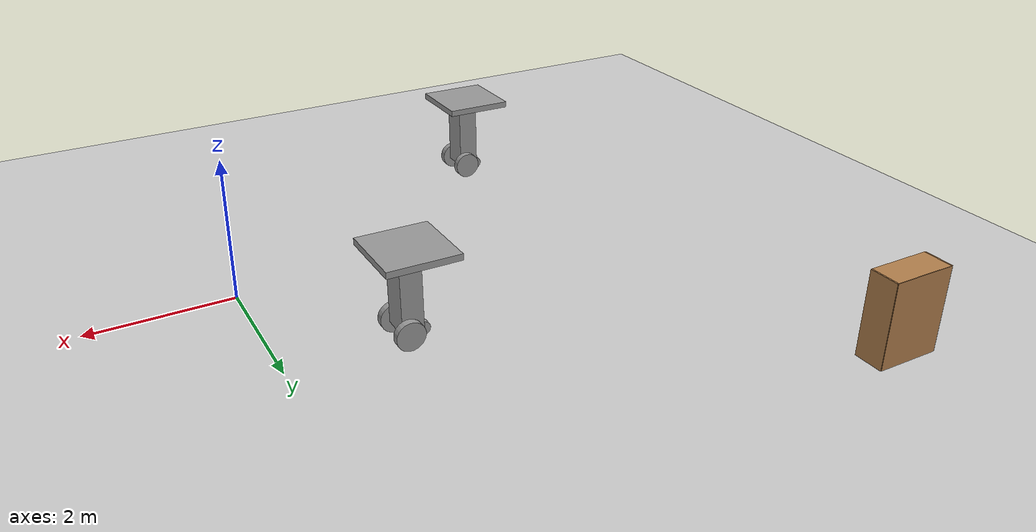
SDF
<sdf version="1.6">
 <world name="default">
  <model name="ground_plane">
   <static>1</static>
   <link name="link">
    <collision name="collision">
     <geometry><plane><normal>0 0 1</normal><size>100 100</size></plane></geometry>
     <surface>
      <contact><collide_bitmask>65535</collide_bitmask></contact>
      <friction><ode><mu>100</mu><mu2>50</mu2></ode></friction>
     </surface>
    </collision>
    <visual name="visual">
     <cast_shadows>0</cast_shadows>
     <geometry><plane><normal>0 0 1</normal><size>100 100</size></plane></geometry>
     <material>
      <script><uri>file://media/materials/scripts/gazebo.material</uri><name>Gazebo/Grey</name></script>
     </material>
    </visual>
   </link>
  </model>
  <model name="bookshelf">
   <static>1</static>
   <link name="link">
    <inertial><mass>1</mass></inertial>
    <collision name="back">
     <pose>0 0.005 0.6 0 -0 0</pose>
     <geometry><box><size>0.9 0.01 1.2</size></box></geometry>
    </collision>
    <visual name="visual1">
     <pose>0 0.005 0.6 0 -0 0</pose>
     <geometry><box><size>0.9 0.01 1.2</size></box></geometry>
     <material>
      <script><uri>file://media/materials/scripts/gazebo.material</uri><name>Gazebo/Wood</name></script>
     </material>
    </visual>
    <collision name="left_side">
     <pose>0.45 -0.195 0.6 0 -0 0</pose>
     <geometry><box><size>0.02 0.4 1.2</size></box></geometry>
    </collision>
    <visual name="visual2">
     <pose>0.45 -0.195 0.6 0 -0 0</pose>
     <geometry><box><size>0.02 0.4 1.2</size></box></geometry>
     <material>
      <script><uri>file://media/materials/scripts/gazebo.material</uri><name>Gazebo/Wood</name></script>
     </material>
    </visual>
    <collision name="right_side">
     <pose>-0.45 -0.195 0.6 0 -0 0</pose>
     <geometry><box><size>0.02 0.4 1.2</size></box></geometry>
    </collision>
    <visual name="visual3">
     <pose>-0.45 -0.195 0.6 0 -0 0</pose>
     <geometry><box><size>0.02 0.4 1.2</size></box></geometry>
     <material>
      <script><uri>file://media/materials/scripts/gazebo.material</uri><name>Gazebo/Wood</name></script>
     </material>
    </visual>
    <collision name="bottom">
     <pose>0 -0.195 0.03 0 -0 0</pose>
     <geometry><box><size>0.88 0.4 0.06</size></box></geometry>
    </collision>
    <visual name="visual4">
     <pose>0 -0.195 0.03 0 -0 0</pose>
     <geometry><box><size>0.88 0.4 0.06</size></box></geometry>
     <material>
      <script><uri>file://media/materials/scripts/gazebo.material</uri><name>Gazebo/Wood</name></script>
     </material>
    </visual>
    <collision name="top">
     <pose>0 -0.195 1.19 0 -0 0</pose>
     <geometry><box><size>0.88 0.4 0.02</size></box></geometry>
    </collision>
    <visual name="visual5">
     <pose>0 -0.195 1.19 0 -0 0</pose>
     <geometry><box><size>0.88 0.4 0.02</size></box></geometry>
     <material>
      <script><uri>file://media/materials/scripts/gazebo.material</uri><name>Gazebo/Wood</name></script>
     </material>
    </visual>
    <collision name="low_shelf">
     <pose>0 -0.195 0.43 0 -0 0</pose>
     <geometry><box><size>0.88 0.4 0.02</size></box></geometry>
    </collision>
    <visual name="visual6">
     <pose>0 -0.195 0.43 0 -0 0</pose>
     <geometry><box><size>0.88 0.4 0.02</size></box></geometry>
     <material>
      <script><uri>file://media/materials/scripts/gazebo.material</uri><name>Gazebo/Wood</name></script>
     </material>
    </visual>
    <collision name="high_shelf">
     <pose>0 -0.195 0.8 0 -0 0</pose>
     <geometry><box><size>0.88 0.4 0.02</size></box></geometry>
    </collision>
    <visual name="visual7">
     <pose>0 -0.195 0.8 0 -0 0</pose>
     <geometry><box><size>0.88 0.4 0.02</size></box></geometry>
     <material>
      <script><uri>file://media/materials/scripts/gazebo.material</uri><name>Gazebo/Wood</name></script>
     </material>
    </visual>
   </link>
   <pose>-6.73615 5.33123 0 0 -0 0</pose>
  </model>
  <model name="my-robo--table">
   <link name="link_0">
    <inertial>
     <mass>1</mass>
     <inertia><ixx>0.145833</ixx><ixy>0</ixy><ixz>0</ixz><iyy>0.145833</iyy><iyz>0</iyz><izz>0.125</izz></inertia>
    </inertial>
    <pose>-0.23542 -0.030044 -0.250504 1.5707 -0 0</pose>
    <visual name="visual">
     <geometry><cylinder><radius>0.1</radius><length>0.1</length></cylinder></geometry>
     <material>
      <lighting>1</lighting>
      <script><uri>file://media/materials/scripts/gazebo.material</uri><name>Gazebo/Grey</name></script>
      <shader type="vertex"><normal_map>__default__</normal_map></shader>
      <ambient>0.3 0.3 0.3 1</ambient>
      <diffuse>0.7 0.7 0.7 1</diffuse>
      <specular>0.01 0.01 0.01 1</specular>
      <emissive>0 0 0 1</emissive>
     </material>
    </visual>
    <collision name="collision">
     <geometry><cylinder><radius>0.1</radius><length>0.1</length></cylinder></geometry>
     <surface>
      <friction>
       <ode><mu>1</mu><mu2>1</mu2><fdir1>0 0 0</fdir1><slip1>0</slip1><slip2>0</slip2></ode>
       <torsional>
        <coefficient>1</coefficient>
        <patch_radius>0</patch_radius>
        <surface_radius>0</surface_radius>
        <use_patch_radius>1</use_patch_radius>
        <ode><slip>0</slip></ode>
       </torsional>
      </friction>
      <bounce><restitution_coefficient>0</restitution_coefficient><threshold>1e+06</threshold></bounce>
      <contact>
       <collide_without_contact>0</collide_without_contact>
       <collide_without_contact_bitmask>1</collide_without_contact_bitmask>
       <collide_bitmask>1</collide_bitmask>
       <ode>
        <soft_cfm>0</soft_cfm>
        <soft_erp>0.2</soft_erp>
        <kp>1e+13</kp>
        <kd>1</kd>
        <max_vel>0.01</max_vel>
        <min_depth>0</min_depth>
       </ode>
       <bullet>
        <split_impulse>1</split_impulse>
        <split_impulse_penetration_threshold>-0.01</split_impulse_penetration_threshold>
        <soft_cfm>0</soft_cfm>
        <soft_erp>0.2</soft_erp>
        <kp>1e+13</kp>
        <kd>1</kd>
       </bullet>
      </contact>
     </surface>
    </collision>
   </link>
   <link name="link_3">
    <inertial>
     <mass>1</mass>
     <inertia><ixx>0.145833</ixx><ixy>0</ixy><ixz>0</ixz><iyy>0.145833</iyy><iyz>0</iyz><izz>0.125</izz></inertia>
    </inertial>
    <pose>0.05458 -0.280049 -0.260504 1.5707 -0 0</pose>
    <visual name="visual">
     <geometry><cylinder><radius>0.2</radius><length>0.1</length></cylinder></geometry>
     <material>
      <lighting>1</lighting>
      <script><uri>file://media/materials/scripts/gazebo.material</uri><name>Gazebo/Grey</name></script>
      <shader type="vertex"><normal_map>__default__</normal_map></shader>
      <ambient>0.3 0.3 0.3 1</ambient>
      <diffuse>0.7 0.7 0.7 1</diffuse>
      <specular>0.01 0.01 0.01 1</specular>
      <emissive>0 0 0 1</emissive>
     </material>
    </visual>
    <collision name="collision">
     <geometry><cylinder><radius>0.2</radius><length>0.1</length></cylinder></geometry>
     <surface>
      <friction>
       <ode><mu>1</mu><mu2>1</mu2><fdir1>0 0 0</fdir1><slip1>0</slip1><slip2>0</slip2></ode>
       <torsional>
        <coefficient>1</coefficient>
        <patch_radius>0</patch_radius>
        <surface_radius>0</surface_radius>
        <use_patch_radius>1</use_patch_radius>
        <ode><slip>0</slip></ode>
       </torsional>
      </friction>
      <bounce><restitution_coefficient>0</restitution_coefficient><threshold>1e+06</threshold></bounce>
      <contact>
       <collide_without_contact>0</collide_without_contact>
       <collide_without_contact_bitmask>1</collide_without_contact_bitmask>
       <collide_bitmask>1</collide_bitmask>
       <ode>
        <soft_cfm>0</soft_cfm>
        <soft_erp>0.2</soft_erp>
        <kp>1e+13</kp>
        <kd>1</kd>
        <max_vel>0.01</max_vel>
        <min_depth>0</min_depth>
       </ode>
       <bullet>
        <split_impulse>1</split_impulse>
        <split_impulse_penetration_threshold>-0.01</split_impulse_penetration_threshold>
        <soft_cfm>0</soft_cfm>
        <soft_erp>0.2</soft_erp>
        <kp>1e+13</kp>
        <kd>1</kd>
       </bullet>
      </contact>
     </surface>
    </collision>
   </link>
   <link name="link_3_clone">
    <inertial>
     <mass>1</mass>
     <inertia><ixx>0.145833</ixx><ixy>0</ixy><ixz>0</ixz><iyy>0.145833</iyy><iyz>0</iyz><izz>0.125</izz></inertia>
    </inertial>
    <pose>0.05458 0.219989 -0.260504 1.5707 -0 0</pose>
    <visual name="visual">
     <geometry><cylinder><radius>0.2</radius><length>0.1</length></cylinder></geometry>
     <material>
      <lighting>1</lighting>
      <script><uri>file://media/materials/scripts/gazebo.material</uri><name>Gazebo/Grey</name></script>
      <shader type="vertex"><normal_map>__default__</normal_map></shader>
      <ambient>0.3 0.3 0.3 1</ambient>
      <diffuse>0.7 0.7 0.7 1</diffuse>
      <specular>0.01 0.01 0.01 1</specular>
      <emissive>0 0 0 1</emissive>
     </material>
    </visual>
    <collision name="collision">
     <geometry><cylinder><radius>0.2</radius><length>0.1</length></cylinder></geometry>
     <surface>
      <friction>
       <ode><mu>1</mu><mu2>1</mu2><fdir1>0 0 0</fdir1><slip1>0</slip1><slip2>0</slip2></ode>
       <torsional>
        <coefficient>1</coefficient>
        <patch_radius>0</patch_radius>
        <surface_radius>0</surface_radius>
        <use_patch_radius>1</use_patch_radius>
        <ode><slip>0</slip></ode>
       </torsional>
      </friction>
      <bounce><restitution_coefficient>0</restitution_coefficient><threshold>1e+06</threshold></bounce>
      <contact>
       <collide_without_contact>0</collide_without_contact>
       <collide_without_contact_bitmask>1</collide_without_contact_bitmask>
       <collide_bitmask>1</collide_bitmask>
       <ode>
        <soft_cfm>0</soft_cfm>
        <soft_erp>0.2</soft_erp>
        <kp>1e+13</kp>
        <kd>1</kd>
        <max_vel>0.01</max_vel>
        <min_depth>0</min_depth>
       </ode>
       <bullet>
        <split_impulse>1</split_impulse>
        <split_impulse_penetration_threshold>-0.01</split_impulse_penetration_threshold>
        <soft_cfm>0</soft_cfm>
        <soft_erp>0.2</soft_erp>
        <kp>1e+13</kp>
        <kd>1</kd>
       </bullet>
      </contact>
     </surface>
    </collision>
   </link>
   <link name="link_4">
    <inertial>
     <mass>1</mass>
     <inertia>
      <ixx>0.166667</ixx>
      <ixy>0</ixy>
      <ixz>0</ixz>
      <iyy>0.166667</iyy>
      <iyz>0</iyz>
      <izz>0.166667</izz>
     </inertia>
    </inertial>
    <pose>0.174801 -0.03003 0.202531 0 0.403831 0</pose>
    <visual name="visual">
     <geometry><box><size>0.3 0.4 1</size></box></geometry>
     <material>
      <lighting>1</lighting>
      <script><uri>file://media/materials/scripts/gazebo.material</uri><name>Gazebo/Grey</name></script>
      <shader type="vertex"><normal_map>__default__</normal_map></shader>
      <ambient>0.3 0.3 0.3 1</ambient>
      <diffuse>0.7 0.7 0.7 1</diffuse>
      <specular>0.01 0.01 0.01 1</specular>
      <emissive>0 0 0 1</emissive>
     </material>
    </visual>
    <collision name="collision">
     <geometry><box><size>0.3 0.4 1</size></box></geometry>
     <surface>
      <friction>
       <ode><mu>1</mu><mu2>1</mu2><fdir1>0 0 0</fdir1><slip1>0</slip1><slip2>0</slip2></ode>
       <torsional>
        <coefficient>1</coefficient>
        <patch_radius>0</patch_radius>
        <surface_radius>0</surface_radius>
        <use_patch_radius>1</use_patch_radius>
        <ode><slip>0</slip></ode>
       </torsional>
      </friction>
      <bounce><restitution_coefficient>0</restitution_coefficient><threshold>1e+06</threshold></bounce>
      <contact>
       <collide_without_contact>0</collide_without_contact>
       <collide_without_contact_bitmask>1</collide_without_contact_bitmask>
       <collide_bitmask>1</collide_bitmask>
       <ode>
        <soft_cfm>0</soft_cfm>
        <soft_erp>0.2</soft_erp>
        <kp>1e+13</kp>
        <kd>1</kd>
        <max_vel>0.01</max_vel>
        <min_depth>0</min_depth>
       </ode>
       <bullet>
        <split_impulse>1</split_impulse>
        <split_impulse_penetration_threshold>-0.01</split_impulse_penetration_threshold>
        <soft_cfm>0</soft_cfm>
        <soft_erp>0.2</soft_erp>
        <kp>1e+13</kp>
        <kd>1</kd>
       </bullet>
      </contact>
     </surface>
    </collision>
   </link>
   <link name="link_5">
    <inertial>
     <mass>3.20821</mass>
     <inertia><ixx>0.37742</ixx><ixy>0</ixy><ixz>0</ixz><iyy>0.37742</iyy><iyz>0</iyz><izz>0.534702</izz></inertia>
    </inertial>
    <pose>0.343061 -0.026636 0.759998 0.009094 0.378667 0.004972</pose>
    <visual name="visual">
     <geometry><box><size>1 1 0.09</size></box></geometry>
     <material>
      <lighting>1</lighting>
      <script><uri>file://media/materials/scripts/gazebo.material</uri><name>Gazebo/Grey</name></script>
      <shader type="vertex"><normal_map>__default__</normal_map></shader>
      <ambient>0.3 0.3 0.3 1</ambient>
      <diffuse>0.7 0.7 0.7 1</diffuse>
      <specular>0.01 0.01 0.01 1</specular>
      <emissive>0 0 0 1</emissive>
     </material>
    </visual>
    <collision name="collision">
     <geometry><box><size>1 1 0.09</size></box></geometry>
     <surface>
      <friction>
       <ode><mu>1</mu><mu2>1</mu2><fdir1>0 0 0</fdir1><slip1>0</slip1><slip2>0</slip2></ode>
       <torsional>
        <coefficient>1</coefficient>
        <patch_radius>0</patch_radius>
        <surface_radius>0</surface_radius>
        <use_patch_radius>1</use_patch_radius>
        <ode><slip>0</slip></ode>
       </torsional>
      </friction>
      <bounce><restitution_coefficient>0</restitution_coefficient><threshold>1e+06</threshold></bounce>
      <contact>
       <collide_without_contact>0</collide_without_contact>
       <collide_without_contact_bitmask>1</collide_without_contact_bitmask>
       <collide_bitmask>1</collide_bitmask>
       <ode>
        <soft_cfm>0</soft_cfm>
        <soft_erp>0.2</soft_erp>
        <kp>1e+13</kp>
        <kd>1</kd>
        <max_vel>0.01</max_vel>
        <min_depth>0</min_depth>
       </ode>
       <bullet>
        <split_impulse>1</split_impulse>
        <split_impulse_penetration_threshold>-0.01</split_impulse_penetration_threshold>
        <soft_cfm>0</soft_cfm>
        <soft_erp>0.2</soft_erp>
        <kp>1e+13</kp>
        <kd>1</kd>
       </bullet>
      </contact>
     </surface>
    </collision>
   </link>
   <joint name="link_4_JOINT_0" type="revolute">
    <parent>link_4</parent>
    <child>link_5</child>
    <axis>
     <xyz>0 0 1</xyz>
     <use_parent_model_frame>0</use_parent_model_frame>
     <limit>
      <lower>-1.79769e+308</lower>
      <upper>1.79769e+308</upper>
      <effort>-1</effort>
      <velocity>-1</velocity>
     </limit>
     <dynamics>
      <spring_reference>0</spring_reference>
      <spring_stiffness>0</spring_stiffness>
      <damping>0</damping>
     </dynamics>
    </axis>
    <physics>
     <ode><limit><cfm>0</cfm><erp>0.2</erp></limit><suspension><cfm>0</cfm><erp>0.2</erp></suspension></ode>
    </physics>
   </joint>
   <joint name="link_4_JOINT_4" type="revolute">
    <parent>link_4</parent>
    <child>link_3_clone</child>
    <axis>
     <xyz>1 0 0</xyz>
     <use_parent_model_frame>0</use_parent_model_frame>
     <limit>
      <lower>-1.79769e+308</lower>
      <upper>1.79769e+308</upper>
      <effort>-1</effort>
      <velocity>-1</velocity>
     </limit>
     <dynamics>
      <spring_reference>0</spring_reference>
      <spring_stiffness>0</spring_stiffness>
      <damping>0</damping>
      <friction>0</friction>
     </dynamics>
    </axis>
    <physics>
     <ode><limit><cfm>0</cfm><erp>0.2</erp></limit><suspension><cfm>0</cfm><erp>0.2</erp></suspension></ode>
    </physics>
   </joint>
   <joint name="link_4_JOINT_5" type="revolute">
    <parent>link_4</parent>
    <child>link_3</child>
    <axis>
     <xyz>1 0 0</xyz>
     <use_parent_model_frame>0</use_parent_model_frame>
     <limit>
      <lower>-1.79769e+308</lower>
      <upper>1.79769e+308</upper>
      <effort>-1</effort>
      <velocity>-1</velocity>
     </limit>
     <dynamics>
      <spring_reference>0</spring_reference>
      <spring_stiffness>0</spring_stiffness>
      <damping>0</damping>
      <friction>0</friction>
     </dynamics>
    </axis>
    <physics>
     <ode><limit><cfm>0</cfm><erp>0.2</erp></limit><suspension><cfm>0</cfm><erp>0.2</erp></suspension></ode>
    </physics>
   </joint>
   <joint name="link_4_JOINT_6" type="revolute">
    <parent>link_4</parent>
    <child>link_0</child>
    <axis>
     <xyz>1 0 0</xyz>
     <use_parent_model_frame>0</use_parent_model_frame>
     <limit>
      <lower>-1.79769e+308</lower>
      <upper>1.79769e+308</upper>
      <effort>-1</effort>
      <velocity>-1</velocity>
     </limit>
     <dynamics>
      <spring_reference>0</spring_reference>
      <spring_stiffness>0</spring_stiffness>
      <damping>0</damping>
      <friction>0</friction>
     </dynamics>
    </axis>
    <physics>
     <ode><limit><cfm>0</cfm><erp>0.2</erp></limit><suspension><cfm>0</cfm><erp>0.2</erp></suspension></ode>
    </physics>
   </joint>
   <static>0</static>
   <pose>-1.69452 2.00992 0.420744 9.5e-05 -0.386296 -0.003733</pose>
  </model>
  <model name="my-robo--table_clone">
   <link name="link_0">
    <inertial>
     <mass>1</mass>
     <inertia><ixx>0.145833</ixx><ixy>0</ixy><ixz>0</ixz><iyy>0.145833</iyy><iyz>0</iyz><izz>0.125</izz></inertia>
    </inertial>
    <pose>-0.23542 -0.030044 -0.250504 1.5707 -0 0</pose>
    <visual name="visual">
     <geometry><cylinder><radius>0.1</radius><length>0.1</length></cylinder></geometry>
     <material>
      <lighting>1</lighting>
      <script><uri>file://media/materials/scripts/gazebo.material</uri><name>Gazebo/Grey</name></script>
      <shader type="vertex"><normal_map>__default__</normal_map></shader>
      <ambient>0.3 0.3 0.3 1</ambient>
      <diffuse>0.7 0.7 0.7 1</diffuse>
      <specular>0.01 0.01 0.01 1</specular>
      <emissive>0 0 0 1</emissive>
     </material>
    </visual>
    <collision name="collision">
     <geometry><cylinder><radius>0.1</radius><length>0.1</length></cylinder></geometry>
     <surface>
      <friction>
       <ode><mu>1</mu><mu2>1</mu2><fdir1>0 0 0</fdir1><slip1>0</slip1><slip2>0</slip2></ode>
       <torsional>
        <coefficient>1</coefficient>
        <patch_radius>0</patch_radius>
        <surface_radius>0</surface_radius>
        <use_patch_radius>1</use_patch_radius>
        <ode><slip>0</slip></ode>
       </torsional>
      </friction>
      <bounce><restitution_coefficient>0</restitution_coefficient><threshold>1e+06</threshold></bounce>
      <contact>
       <collide_without_contact>0</collide_without_contact>
       <collide_without_contact_bitmask>1</collide_without_contact_bitmask>
       <collide_bitmask>1</collide_bitmask>
       <ode>
        <soft_cfm>0</soft_cfm>
        <soft_erp>0.2</soft_erp>
        <kp>1e+13</kp>
        <kd>1</kd>
        <max_vel>0.01</max_vel>
        <min_depth>0</min_depth>
       </ode>
       <bullet>
        <split_impulse>1</split_impulse>
        <split_impulse_penetration_threshold>-0.01</split_impulse_penetration_threshold>
        <soft_cfm>0</soft_cfm>
        <soft_erp>0.2</soft_erp>
        <kp>1e+13</kp>
        <kd>1</kd>
       </bullet>
      </contact>
     </surface>
    </collision>
   </link>
   <link name="link_3">
    <inertial>
     <mass>1</mass>
     <inertia><ixx>0.145833</ixx><ixy>0</ixy><ixz>0</ixz><iyy>0.145833</iyy><iyz>0</iyz><izz>0.125</izz></inertia>
    </inertial>
    <pose>0.05458 -0.280049 -0.260504 1.5707 -0 0</pose>
    <visual name="visual">
     <geometry><cylinder><radius>0.2</radius><length>0.1</length></cylinder></geometry>
     <material>
      <lighting>1</lighting>
      <script><uri>file://media/materials/scripts/gazebo.material</uri><name>Gazebo/Grey</name></script>
      <shader type="vertex"><normal_map>__default__</normal_map></shader>
      <ambient>0.3 0.3 0.3 1</ambient>
      <diffuse>0.7 0.7 0.7 1</diffuse>
      <specular>0.01 0.01 0.01 1</specular>
      <emissive>0 0 0 1</emissive>
     </material>
    </visual>
    <collision name="collision">
     <geometry><cylinder><radius>0.2</radius><length>0.1</length></cylinder></geometry>
     <surface>
      <friction>
       <ode><mu>1</mu><mu2>1</mu2><fdir1>0 0 0</fdir1><slip1>0</slip1><slip2>0</slip2></ode>
       <torsional>
        <coefficient>1</coefficient>
        <patch_radius>0</patch_radius>
        <surface_radius>0</surface_radius>
        <use_patch_radius>1</use_patch_radius>
        <ode><slip>0</slip></ode>
       </torsional>
      </friction>
      <bounce><restitution_coefficient>0</restitution_coefficient><threshold>1e+06</threshold></bounce>
      <contact>
       <collide_without_contact>0</collide_without_contact>
       <collide_without_contact_bitmask>1</collide_without_contact_bitmask>
       <collide_bitmask>1</collide_bitmask>
       <ode>
        <soft_cfm>0</soft_cfm>
        <soft_erp>0.2</soft_erp>
        <kp>1e+13</kp>
        <kd>1</kd>
        <max_vel>0.01</max_vel>
        <min_depth>0</min_depth>
       </ode>
       <bullet>
        <split_impulse>1</split_impulse>
        <split_impulse_penetration_threshold>-0.01</split_impulse_penetration_threshold>
        <soft_cfm>0</soft_cfm>
        <soft_erp>0.2</soft_erp>
        <kp>1e+13</kp>
        <kd>1</kd>
       </bullet>
      </contact>
     </surface>
    </collision>
   </link>
   <link name="link_3_clone">
    <inertial>
     <mass>1</mass>
     <inertia><ixx>0.145833</ixx><ixy>0</ixy><ixz>0</ixz><iyy>0.145833</iyy><iyz>0</iyz><izz>0.125</izz></inertia>
    </inertial>
    <pose>0.05458 0.219989 -0.260504 1.5707 -0 0</pose>
    <visual name="visual">
     <geometry><cylinder><radius>0.2</radius><length>0.1</length></cylinder></geometry>
     <material>
      <lighting>1</lighting>
      <script><uri>file://media/materials/scripts/gazebo.material</uri><name>Gazebo/Grey</name></script>
      <shader type="vertex"><normal_map>__default__</normal_map></shader>
      <ambient>0.3 0.3 0.3 1</ambient>
      <diffuse>0.7 0.7 0.7 1</diffuse>
      <specular>0.01 0.01 0.01 1</specular>
      <emissive>0 0 0 1</emissive>
     </material>
    </visual>
    <collision name="collision">
     <geometry><cylinder><radius>0.2</radius><length>0.1</length></cylinder></geometry>
     <surface>
      <friction>
       <ode><mu>1</mu><mu2>1</mu2><fdir1>0 0 0</fdir1><slip1>0</slip1><slip2>0</slip2></ode>
       <torsional>
        <coefficient>1</coefficient>
        <patch_radius>0</patch_radius>
        <surface_radius>0</surface_radius>
        <use_patch_radius>1</use_patch_radius>
        <ode><slip>0</slip></ode>
       </torsional>
      </friction>
      <bounce><restitution_coefficient>0</restitution_coefficient><threshold>1e+06</threshold></bounce>
      <contact>
       <collide_without_contact>0</collide_without_contact>
       <collide_without_contact_bitmask>1</collide_without_contact_bitmask>
       <collide_bitmask>1</collide_bitmask>
       <ode>
        <soft_cfm>0</soft_cfm>
        <soft_erp>0.2</soft_erp>
        <kp>1e+13</kp>
        <kd>1</kd>
        <max_vel>0.01</max_vel>
        <min_depth>0</min_depth>
       </ode>
       <bullet>
        <split_impulse>1</split_impulse>
        <split_impulse_penetration_threshold>-0.01</split_impulse_penetration_threshold>
        <soft_cfm>0</soft_cfm>
        <soft_erp>0.2</soft_erp>
        <kp>1e+13</kp>
        <kd>1</kd>
       </bullet>
      </contact>
     </surface>
    </collision>
   </link>
   <link name="link_4">
    <inertial>
     <mass>1</mass>
     <inertia>
      <ixx>0.166667</ixx>
      <ixy>0</ixy>
      <ixz>0</ixz>
      <iyy>0.166667</iyy>
      <iyz>0</iyz>
      <izz>0.166667</izz>
     </inertia>
    </inertial>
    <pose>0.174801 -0.03003 0.202531 0 0.403831 0</pose>
    <visual name="visual">
     <geometry><box><size>0.3 0.4 1</size></box></geometry>
     <material>
      <lighting>1</lighting>
      <script><uri>file://media/materials/scripts/gazebo.material</uri><name>Gazebo/Grey</name></script>
      <shader type="vertex"><normal_map>__default__</normal_map></shader>
      <ambient>0.3 0.3 0.3 1</ambient>
      <diffuse>0.7 0.7 0.7 1</diffuse>
      <specular>0.01 0.01 0.01 1</specular>
      <emissive>0 0 0 1</emissive>
     </material>
    </visual>
    <collision name="collision">
     <geometry><box><size>0.3 0.4 1</size></box></geometry>
     <surface>
      <friction>
       <ode><mu>1</mu><mu2>1</mu2><fdir1>0 0 0</fdir1><slip1>0</slip1><slip2>0</slip2></ode>
       <torsional>
        <coefficient>1</coefficient>
        <patch_radius>0</patch_radius>
        <surface_radius>0</surface_radius>
        <use_patch_radius>1</use_patch_radius>
        <ode><slip>0</slip></ode>
       </torsional>
      </friction>
      <bounce><restitution_coefficient>0</restitution_coefficient><threshold>1e+06</threshold></bounce>
      <contact>
       <collide_without_contact>0</collide_without_contact>
       <collide_without_contact_bitmask>1</collide_without_contact_bitmask>
       <collide_bitmask>1</collide_bitmask>
       <ode>
        <soft_cfm>0</soft_cfm>
        <soft_erp>0.2</soft_erp>
        <kp>1e+13</kp>
        <kd>1</kd>
        <max_vel>0.01</max_vel>
        <min_depth>0</min_depth>
       </ode>
       <bullet>
        <split_impulse>1</split_impulse>
        <split_impulse_penetration_threshold>-0.01</split_impulse_penetration_threshold>
        <soft_cfm>0</soft_cfm>
        <soft_erp>0.2</soft_erp>
        <kp>1e+13</kp>
        <kd>1</kd>
       </bullet>
      </contact>
     </surface>
    </collision>
   </link>
   <link name="link_5">
    <inertial>
     <mass>3.20821</mass>
     <inertia><ixx>0.37742</ixx><ixy>0</ixy><ixz>0</ixz><iyy>0.37742</iyy><iyz>0</iyz><izz>0.534702</izz></inertia>
    </inertial>
    <pose>0.343061 -0.026636 0.759998 0.009094 0.378667 0.004972</pose>
    <visual name="visual">
     <geometry><box><size>1 1 0.09</size></box></geometry>
     <material>
      <lighting>1</lighting>
      <script><uri>file://media/materials/scripts/gazebo.material</uri><name>Gazebo/Grey</name></script>
      <shader type="vertex"><normal_map>__default__</normal_map></shader>
      <ambient>0.3 0.3 0.3 1</ambient>
      <diffuse>0.7 0.7 0.7 1</diffuse>
      <specular>0.01 0.01 0.01 1</specular>
      <emissive>0 0 0 1</emissive>
     </material>
    </visual>
    <collision name="collision">
     <geometry><box><size>1 1 0.09</size></box></geometry>
     <surface>
      <friction>
       <ode><mu>1</mu><mu2>1</mu2><fdir1>0 0 0</fdir1><slip1>0</slip1><slip2>0</slip2></ode>
       <torsional>
        <coefficient>1</coefficient>
        <patch_radius>0</patch_radius>
        <surface_radius>0</surface_radius>
        <use_patch_radius>1</use_patch_radius>
        <ode><slip>0</slip></ode>
       </torsional>
      </friction>
      <bounce><restitution_coefficient>0</restitution_coefficient><threshold>1e+06</threshold></bounce>
      <contact>
       <collide_without_contact>0</collide_without_contact>
       <collide_without_contact_bitmask>1</collide_without_contact_bitmask>
       <collide_bitmask>1</collide_bitmask>
       <ode>
        <soft_cfm>0</soft_cfm>
        <soft_erp>0.2</soft_erp>
        <kp>1e+13</kp>
        <kd>1</kd>
        <max_vel>0.01</max_vel>
        <min_depth>0</min_depth>
       </ode>
       <bullet>
        <split_impulse>1</split_impulse>
        <split_impulse_penetration_threshold>-0.01</split_impulse_penetration_threshold>
        <soft_cfm>0</soft_cfm>
        <soft_erp>0.2</soft_erp>
        <kp>1e+13</kp>
        <kd>1</kd>
       </bullet>
      </contact>
     </surface>
    </collision>
   </link>
   <joint name="link_4_JOINT_0" type="revolute">
    <parent>link_4</parent>
    <child>link_5</child>
    <axis>
     <xyz>0 0 1</xyz>
     <use_parent_model_frame>0</use_parent_model_frame>
     <limit>
      <lower>-1.79769e+308</lower>
      <upper>1.79769e+308</upper>
      <effort>-1</effort>
      <velocity>-1</velocity>
     </limit>
     <dynamics>
      <spring_reference>0</spring_reference>
      <spring_stiffness>0</spring_stiffness>
      <damping>0</damping>
     </dynamics>
    </axis>
    <physics>
     <ode><limit><cfm>0</cfm><erp>0.2</erp></limit><suspension><cfm>0</cfm><erp>0.2</erp></suspension></ode>
    </physics>
   </joint>
   <joint name="link_4_JOINT_4" type="revolute">
    <parent>link_4</parent>
    <child>link_3_clone</child>
    <axis>
     <xyz>1 0 0</xyz>
     <use_parent_model_frame>0</use_parent_model_frame>
     <limit>
      <lower>-1.79769e+308</lower>
      <upper>1.79769e+308</upper>
      <effort>-1</effort>
      <velocity>-1</velocity>
     </limit>
     <dynamics>
      <spring_reference>0</spring_reference>
      <spring_stiffness>0</spring_stiffness>
      <damping>0</damping>
      <friction>0</friction>
     </dynamics>
    </axis>
    <physics>
     <ode><limit><cfm>0</cfm><erp>0.2</erp></limit><suspension><cfm>0</cfm><erp>0.2</erp></suspension></ode>
    </physics>
   </joint>
   <joint name="link_4_JOINT_5" type="revolute">
    <parent>link_4</parent>
    <child>link_3</child>
    <axis>
     <xyz>1 0 0</xyz>
     <use_parent_model_frame>0</use_parent_model_frame>
     <limit>
      <lower>-1.79769e+308</lower>
      <upper>1.79769e+308</upper>
      <effort>-1</effort>
      <velocity>-1</velocity>
     </limit>
     <dynamics>
      <spring_reference>0</spring_reference>
      <spring_stiffness>0</spring_stiffness>
      <damping>0</damping>
      <friction>0</friction>
     </dynamics>
    </axis>
    <physics>
     <ode><limit><cfm>0</cfm><erp>0.2</erp></limit><suspension><cfm>0</cfm><erp>0.2</erp></suspension></ode>
    </physics>
   </joint>
   <joint name="link_4_JOINT_6" type="revolute">
    <parent>link_4</parent>
    <child>link_0</child>
    <axis>
     <xyz>1 0 0</xyz>
     <use_parent_model_frame>0</use_parent_model_frame>
     <limit>
      <lower>-1.79769e+308</lower>
      <upper>1.79769e+308</upper>
      <effort>-1</effort>
      <velocity>-1</velocity>
     </limit>
     <dynamics>
      <spring_reference>0</spring_reference>
      <spring_stiffness>0</spring_stiffness>
      <damping>0</damping>
      <friction>0</friction>
     </dynamics>
    </axis>
    <physics>
     <ode><limit><cfm>0</cfm><erp>0.2</erp></limit><suspension><cfm>0</cfm><erp>0.2</erp></suspension></ode>
    </physics>
   </joint>
   <static>0</static>
   <pose>-4.72224 -2.34176 0.420744 9.5e-05 -0.386297 -0.003576</pose>
  </model>
 </world>
</sdf>
